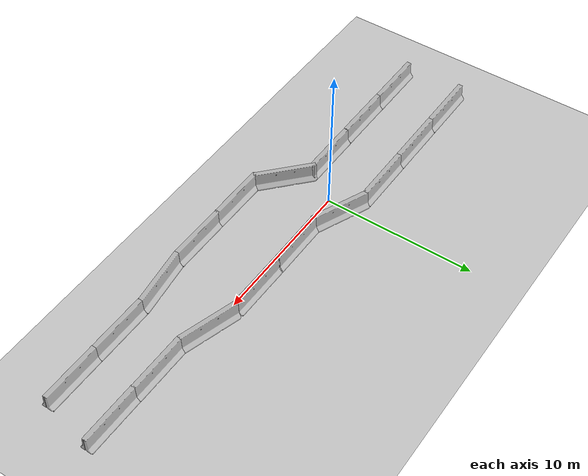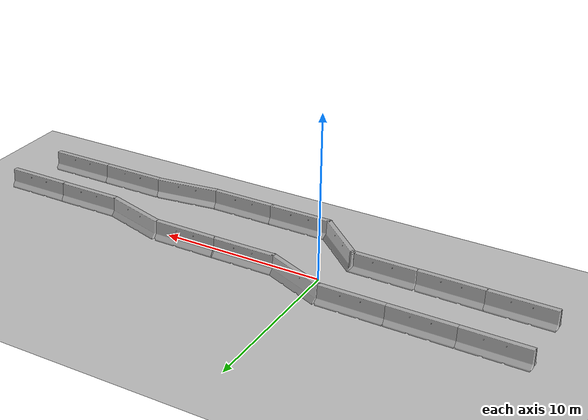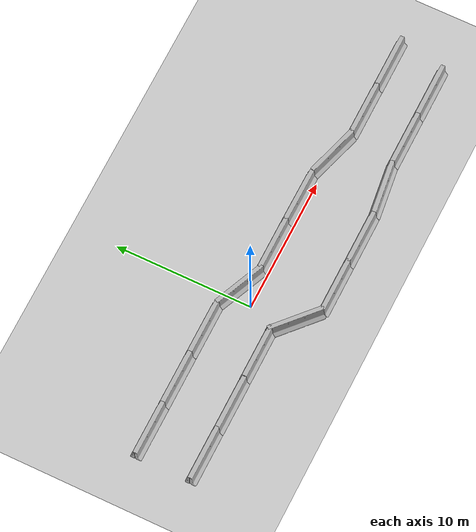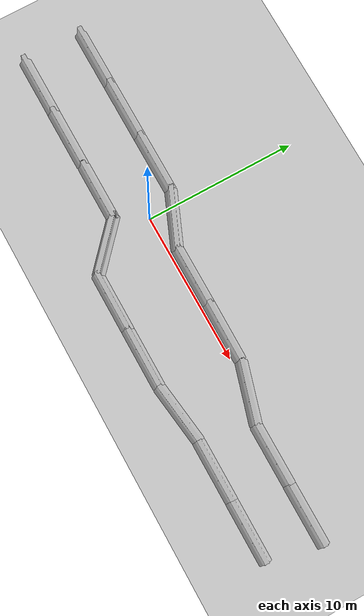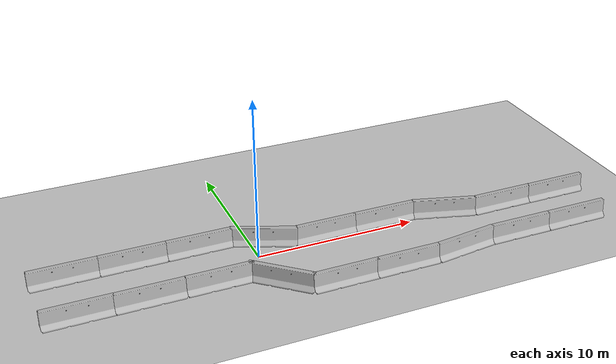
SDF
<sdf version="1.4">
 <world name="default">
  <light name="sun" type="directional">
   <pose>0 0 10 0 -0 0</pose>
   <diffuse>0.8 0.8 0.8 1</diffuse>
   <specular>0.2 0.2 0.2 1</specular>
   <attenuation>
    <range>1000</range>
    <constant>0.9</constant>
    <linear>0.01</linear>
    <quadratic>0.001</quadratic>
   </attenuation>
   <direction>-0.5 0.1 -0.9</direction>
  </light>
  <model name="ground_plane">
   <static>1</static>
   <link name="link">
    <collision name="collision">
     <geometry><plane><normal>0 0 1</normal><size>100 100</size></plane></geometry>
     <surface><friction><ode><mu>100</mu><mu2>50</mu2></ode></friction></surface>
    </collision>
    <visual name="visual">
     <cast_shadows>0</cast_shadows>
     <geometry><plane><normal>0 0 1</normal><size>100 100</size></plane></geometry>
     <material>
      <script><uri>file://media/materials/scripts/gazebo.material</uri><name>Gazebo/Grey</name></script>
     </material>
    </visual>
    <velocity_decay><linear>0</linear><angular>0</angular></velocity_decay>
   </link>
  </model>
  <physics type="ode">
   <max_step_size>0.001</max_step_size>
   <real_time_factor>1</real_time_factor>
   <real_time_update_rate>1000</real_time_update_rate>
   <gravity>0 0 -9.8</gravity>
  </physics>
  <scene><ambient>0.4 0.4 0.4 1</ambient><background>0.7 0.7 0.7 1</background><shadows>1</shadows></scene>
  <spherical_coordinates>
   <surface_model>EARTH_WGS84</surface_model>
   <latitude_deg>0</latitude_deg>
   <longitude_deg>0</longitude_deg>
   <elevation>0</elevation>
   <heading_deg>0</heading_deg>
  </spherical_coordinates>
  <model name="jersey_barrier">
   <static>1</static>
   <link name="link">
    <visual name="visual">
     <geometry><mesh><uri>model://jersey_barrier/meshes/jersey_barrier.dae</uri></mesh></geometry>
    </visual>
    <collision name="upright">
     <pose>0 0 0.5715 0 -0 0</pose>
     <geometry><box><size>4.06542 0.3063 1.143</size></box></geometry>
    </collision>
    <collision name="base">
     <pose>0 0 0.032258 0 -0 0</pose>
     <geometry><box><size>4.06542 0.8107 0.064516</size></box></geometry>
    </collision>
    <collision name="base2">
     <pose>0 0 0.1 0 -0 0</pose>
     <geometry><box><size>4.06542 0.65 0.1</size></box></geometry>
    </collision>
    <collision name="base3">
     <pose>0 0 0.2 0 -0 0</pose>
     <geometry><box><size>4.06542 0.5 0.1</size></box></geometry>
    </collision>
    <collision name="left-angle">
     <pose>0 -0.224 0.2401 0.9 -0 0</pose>
     <geometry><box><size>4.06542 0.5 0.064516</size></box></geometry>
    </collision>
    <collision name="right-angle">
     <pose>0 0.224 0.2401 -0.9 0 0</pose>
     <geometry><box><size>4.06542 0.5 0.064516</size></box></geometry>
    </collision>
    <velocity_decay><linear>0</linear><angular>0</angular></velocity_decay>
   </link>
   <pose>-7.05524 -2.0101 0 0 -0 0</pose>
  </model>
  <model name="jersey_barrier_0">
   <static>1</static>
   <link name="link">
    <visual name="visual">
     <geometry><mesh><uri>model://jersey_barrier/meshes/jersey_barrier.dae</uri></mesh></geometry>
    </visual>
    <collision name="upright">
     <pose>0 0 0.5715 0 -0 0</pose>
     <geometry><box><size>4.06542 0.3063 1.143</size></box></geometry>
    </collision>
    <collision name="base">
     <pose>0 0 0.032258 0 -0 0</pose>
     <geometry><box><size>4.06542 0.8107 0.064516</size></box></geometry>
    </collision>
    <collision name="base2">
     <pose>0 0 0.1 0 -0 0</pose>
     <geometry><box><size>4.06542 0.65 0.1</size></box></geometry>
    </collision>
    <collision name="base3">
     <pose>0 0 0.2 0 -0 0</pose>
     <geometry><box><size>4.06542 0.5 0.1</size></box></geometry>
    </collision>
    <collision name="left-angle">
     <pose>0 -0.224 0.2401 0.9 -0 0</pose>
     <geometry><box><size>4.06542 0.5 0.064516</size></box></geometry>
    </collision>
    <collision name="right-angle">
     <pose>0 0.224 0.2401 -0.9 0 0</pose>
     <geometry><box><size>4.06542 0.5 0.064516</size></box></geometry>
    </collision>
    <velocity_decay><linear>0</linear><angular>0</angular></velocity_decay>
   </link>
   <pose>-7 2 0 0 -0 0</pose>
  </model>
  <model name="jersey_barrier_1">
   <static>1</static>
   <link name="link">
    <visual name="visual">
     <geometry><mesh><uri>model://jersey_barrier/meshes/jersey_barrier.dae</uri></mesh></geometry>
    </visual>
    <collision name="upright">
     <pose>0 0 0.5715 0 -0 0</pose>
     <geometry><box><size>4.06542 0.3063 1.143</size></box></geometry>
    </collision>
    <collision name="base">
     <pose>0 0 0.032258 0 -0 0</pose>
     <geometry><box><size>4.06542 0.8107 0.064516</size></box></geometry>
    </collision>
    <collision name="base2">
     <pose>0 0 0.1 0 -0 0</pose>
     <geometry><box><size>4.06542 0.65 0.1</size></box></geometry>
    </collision>
    <collision name="base3">
     <pose>0 0 0.2 0 -0 0</pose>
     <geometry><box><size>4.06542 0.5 0.1</size></box></geometry>
    </collision>
    <collision name="left-angle">
     <pose>0 -0.224 0.2401 0.9 -0 0</pose>
     <geometry><box><size>4.06542 0.5 0.064516</size></box></geometry>
    </collision>
    <collision name="right-angle">
     <pose>0 0.224 0.2401 -0.9 0 0</pose>
     <geometry><box><size>4.06542 0.5 0.064516</size></box></geometry>
    </collision>
    <velocity_decay><linear>0</linear><angular>0</angular></velocity_decay>
   </link>
   <pose>-3 2 0 0 -0 0</pose>
  </model>
  <model name="jersey_barrier_2">
   <static>1</static>
   <link name="link">
    <visual name="visual">
     <geometry><mesh><uri>model://jersey_barrier/meshes/jersey_barrier.dae</uri></mesh></geometry>
    </visual>
    <collision name="upright">
     <pose>0 0 0.5715 0 -0 0</pose>
     <geometry><box><size>4.06542 0.3063 1.143</size></box></geometry>
    </collision>
    <collision name="base">
     <pose>0 0 0.032258 0 -0 0</pose>
     <geometry><box><size>4.06542 0.8107 0.064516</size></box></geometry>
    </collision>
    <collision name="base2">
     <pose>0 0 0.1 0 -0 0</pose>
     <geometry><box><size>4.06542 0.65 0.1</size></box></geometry>
    </collision>
    <collision name="base3">
     <pose>0 0 0.2 0 -0 0</pose>
     <geometry><box><size>4.06542 0.5 0.1</size></box></geometry>
    </collision>
    <collision name="left-angle">
     <pose>0 -0.224 0.2401 0.9 -0 0</pose>
     <geometry><box><size>4.06542 0.5 0.064516</size></box></geometry>
    </collision>
    <collision name="right-angle">
     <pose>0 0.224 0.2401 -0.9 0 0</pose>
     <geometry><box><size>4.06542 0.5 0.064516</size></box></geometry>
    </collision>
    <velocity_decay><linear>0</linear><angular>0</angular></velocity_decay>
   </link>
   <pose>-3 -2 0 0 -0 0</pose>
  </model>
  <model name="jersey_barrier_3">
   <static>1</static>
   <link name="link">
    <visual name="visual">
     <geometry><mesh><uri>model://jersey_barrier/meshes/jersey_barrier.dae</uri></mesh></geometry>
    </visual>
    <collision name="upright">
     <pose>0 0 0.5715 0 -0 0</pose>
     <geometry><box><size>4.06542 0.3063 1.143</size></box></geometry>
    </collision>
    <collision name="base">
     <pose>0 0 0.032258 0 -0 0</pose>
     <geometry><box><size>4.06542 0.8107 0.064516</size></box></geometry>
    </collision>
    <collision name="base2">
     <pose>0 0 0.1 0 -0 0</pose>
     <geometry><box><size>4.06542 0.65 0.1</size></box></geometry>
    </collision>
    <collision name="base3">
     <pose>0 0 0.2 0 -0 0</pose>
     <geometry><box><size>4.06542 0.5 0.1</size></box></geometry>
    </collision>
    <collision name="left-angle">
     <pose>0 -0.224 0.2401 0.9 -0 0</pose>
     <geometry><box><size>4.06542 0.5 0.064516</size></box></geometry>
    </collision>
    <collision name="right-angle">
     <pose>0 0.224 0.2401 -0.9 0 0</pose>
     <geometry><box><size>4.06542 0.5 0.064516</size></box></geometry>
    </collision>
    <velocity_decay><linear>0</linear><angular>0</angular></velocity_decay>
   </link>
   <pose>0.782316 1.26273 0 0 0 -0.401931</pose>
  </model>
  <model name="jersey_barrier_4">
   <static>1</static>
   <link name="link">
    <visual name="visual">
     <geometry><mesh><uri>model://jersey_barrier/meshes/jersey_barrier.dae</uri></mesh></geometry>
    </visual>
    <collision name="upright">
     <pose>0 0 0.5715 0 -0 0</pose>
     <geometry><box><size>4.06542 0.3063 1.143</size></box></geometry>
    </collision>
    <collision name="base">
     <pose>0 0 0.032258 0 -0 0</pose>
     <geometry><box><size>4.06542 0.8107 0.064516</size></box></geometry>
    </collision>
    <collision name="base2">
     <pose>0 0 0.1 0 -0 0</pose>
     <geometry><box><size>4.06542 0.65 0.1</size></box></geometry>
    </collision>
    <collision name="base3">
     <pose>0 0 0.2 0 -0 0</pose>
     <geometry><box><size>4.06542 0.5 0.1</size></box></geometry>
    </collision>
    <collision name="left-angle">
     <pose>0 -0.224 0.2401 0.9 -0 0</pose>
     <geometry><box><size>4.06542 0.5 0.064516</size></box></geometry>
    </collision>
    <collision name="right-angle">
     <pose>0 0.224 0.2401 -0.9 0 0</pose>
     <geometry><box><size>4.06542 0.5 0.064516</size></box></geometry>
    </collision>
    <velocity_decay><linear>0</linear><angular>0</angular></velocity_decay>
   </link>
   <pose>0.217498 -3.20416 0 0 0 -0.734514</pose>
  </model>
  <model name="jersey_barrier_5">
   <static>1</static>
   <link name="link">
    <visual name="visual">
     <geometry><mesh><uri>model://jersey_barrier/meshes/jersey_barrier.dae</uri></mesh></geometry>
    </visual>
    <collision name="upright">
     <pose>0 0 0.5715 0 -0 0</pose>
     <geometry><box><size>4.06542 0.3063 1.143</size></box></geometry>
    </collision>
    <collision name="base">
     <pose>0 0 0.032258 0 -0 0</pose>
     <geometry><box><size>4.06542 0.8107 0.064516</size></box></geometry>
    </collision>
    <collision name="base2">
     <pose>0 0 0.1 0 -0 0</pose>
     <geometry><box><size>4.06542 0.65 0.1</size></box></geometry>
    </collision>
    <collision name="base3">
     <pose>0 0 0.2 0 -0 0</pose>
     <geometry><box><size>4.06542 0.5 0.1</size></box></geometry>
    </collision>
    <collision name="left-angle">
     <pose>0 -0.224 0.2401 0.9 -0 0</pose>
     <geometry><box><size>4.06542 0.5 0.064516</size></box></geometry>
    </collision>
    <collision name="right-angle">
     <pose>0 0.224 0.2401 -0.9 0 0</pose>
     <geometry><box><size>4.06542 0.5 0.064516</size></box></geometry>
    </collision>
    <velocity_decay><linear>0</linear><angular>0</angular></velocity_decay>
   </link>
   <pose>4.46146 0.538418 0 0 -0 0</pose>
  </model>
  <model name="jersey_barrier_6">
   <static>1</static>
   <link name="link">
    <visual name="visual">
     <geometry><mesh><uri>model://jersey_barrier/meshes/jersey_barrier.dae</uri></mesh></geometry>
    </visual>
    <collision name="upright">
     <pose>0 0 0.5715 0 -0 0</pose>
     <geometry><box><size>4.06542 0.3063 1.143</size></box></geometry>
    </collision>
    <collision name="base">
     <pose>0 0 0.032258 0 -0 0</pose>
     <geometry><box><size>4.06542 0.8107 0.064516</size></box></geometry>
    </collision>
    <collision name="base2">
     <pose>0 0 0.1 0 -0 0</pose>
     <geometry><box><size>4.06542 0.65 0.1</size></box></geometry>
    </collision>
    <collision name="base3">
     <pose>0 0 0.2 0 -0 0</pose>
     <geometry><box><size>4.06542 0.5 0.1</size></box></geometry>
    </collision>
    <collision name="left-angle">
     <pose>0 -0.224 0.2401 0.9 -0 0</pose>
     <geometry><box><size>4.06542 0.5 0.064516</size></box></geometry>
    </collision>
    <collision name="right-angle">
     <pose>0 0.224 0.2401 -0.9 0 0</pose>
     <geometry><box><size>4.06542 0.5 0.064516</size></box></geometry>
    </collision>
    <velocity_decay><linear>0</linear><angular>0</angular></velocity_decay>
   </link>
   <pose>3.57336 -4.53706 0 0 -0 0</pose>
  </model>
  <model name="jersey_barrier_7">
   <static>1</static>
   <link name="link">
    <visual name="visual">
     <geometry><mesh><uri>model://jersey_barrier/meshes/jersey_barrier.dae</uri></mesh></geometry>
    </visual>
    <collision name="upright">
     <pose>0 0 0.5715 0 -0 0</pose>
     <geometry><box><size>4.06542 0.3063 1.143</size></box></geometry>
    </collision>
    <collision name="base">
     <pose>0 0 0.032258 0 -0 0</pose>
     <geometry><box><size>4.06542 0.8107 0.064516</size></box></geometry>
    </collision>
    <collision name="base2">
     <pose>0 0 0.1 0 -0 0</pose>
     <geometry><box><size>4.06542 0.65 0.1</size></box></geometry>
    </collision>
    <collision name="base3">
     <pose>0 0 0.2 0 -0 0</pose>
     <geometry><box><size>4.06542 0.5 0.1</size></box></geometry>
    </collision>
    <collision name="left-angle">
     <pose>0 -0.224 0.2401 0.9 -0 0</pose>
     <geometry><box><size>4.06542 0.5 0.064516</size></box></geometry>
    </collision>
    <collision name="right-angle">
     <pose>0 0.224 0.2401 -0.9 0 0</pose>
     <geometry><box><size>4.06542 0.5 0.064516</size></box></geometry>
    </collision>
    <velocity_decay><linear>0</linear><angular>0</angular></velocity_decay>
   </link>
   <pose>7.4466 -4.54069 0 0 -0 0</pose>
  </model>
  <model name="jersey_barrier_8">
   <static>1</static>
   <link name="link">
    <visual name="visual">
     <geometry><mesh><uri>model://jersey_barrier/meshes/jersey_barrier.dae</uri></mesh></geometry>
    </visual>
    <collision name="upright">
     <pose>0 0 0.5715 0 -0 0</pose>
     <geometry><box><size>4.06542 0.3063 1.143</size></box></geometry>
    </collision>
    <collision name="base">
     <pose>0 0 0.032258 0 -0 0</pose>
     <geometry><box><size>4.06542 0.8107 0.064516</size></box></geometry>
    </collision>
    <collision name="base2">
     <pose>0 0 0.1 0 -0 0</pose>
     <geometry><box><size>4.06542 0.65 0.1</size></box></geometry>
    </collision>
    <collision name="base3">
     <pose>0 0 0.2 0 -0 0</pose>
     <geometry><box><size>4.06542 0.5 0.1</size></box></geometry>
    </collision>
    <collision name="left-angle">
     <pose>0 -0.224 0.2401 0.9 -0 0</pose>
     <geometry><box><size>4.06542 0.5 0.064516</size></box></geometry>
    </collision>
    <collision name="right-angle">
     <pose>0 0.224 0.2401 -0.9 0 0</pose>
     <geometry><box><size>4.06542 0.5 0.064516</size></box></geometry>
    </collision>
    <velocity_decay><linear>0</linear><angular>0</angular></velocity_decay>
   </link>
   <pose>8.38145 0.52526 0 0 0 -0.006802</pose>
  </model>
  <model name="jersey_barrier_9">
   <static>1</static>
   <link name="link">
    <visual name="visual">
     <geometry><mesh><uri>model://jersey_barrier/meshes/jersey_barrier.dae</uri></mesh></geometry>
    </visual>
    <collision name="upright">
     <pose>0 0 0.5715 0 -0 0</pose>
     <geometry><box><size>4.06542 0.3063 1.143</size></box></geometry>
    </collision>
    <collision name="base">
     <pose>0 0 0.032258 0 -0 0</pose>
     <geometry><box><size>4.06542 0.8107 0.064516</size></box></geometry>
    </collision>
    <collision name="base2">
     <pose>0 0 0.1 0 -0 0</pose>
     <geometry><box><size>4.06542 0.65 0.1</size></box></geometry>
    </collision>
    <collision name="base3">
     <pose>0 0 0.2 0 -0 0</pose>
     <geometry><box><size>4.06542 0.5 0.1</size></box></geometry>
    </collision>
    <collision name="left-angle">
     <pose>0 -0.224 0.2401 0.9 -0 0</pose>
     <geometry><box><size>4.06542 0.5 0.064516</size></box></geometry>
    </collision>
    <collision name="right-angle">
     <pose>0 0.224 0.2401 -0.9 0 0</pose>
     <geometry><box><size>4.06542 0.5 0.064516</size></box></geometry>
    </collision>
    <velocity_decay><linear>0</linear><angular>0</angular></velocity_decay>
   </link>
   <pose>12.3476 -0.045557 0 0 0 -0.291245</pose>
  </model>
  <model name="jersey_barrier_10">
   <static>1</static>
   <link name="link">
    <visual name="visual">
     <geometry><mesh><uri>model://jersey_barrier/meshes/jersey_barrier.dae</uri></mesh></geometry>
    </visual>
    <collision name="upright">
     <pose>0 0 0.5715 0 -0 0</pose>
     <geometry><box><size>4.06542 0.3063 1.143</size></box></geometry>
    </collision>
    <collision name="base">
     <pose>0 0 0.032258 0 -0 0</pose>
     <geometry><box><size>4.06542 0.8107 0.064516</size></box></geometry>
    </collision>
    <collision name="base2">
     <pose>0 0 0.1 0 -0 0</pose>
     <geometry><box><size>4.06542 0.65 0.1</size></box></geometry>
    </collision>
    <collision name="base3">
     <pose>0 0 0.2 0 -0 0</pose>
     <geometry><box><size>4.06542 0.5 0.1</size></box></geometry>
    </collision>
    <collision name="left-angle">
     <pose>0 -0.224 0.2401 0.9 -0 0</pose>
     <geometry><box><size>4.06542 0.5 0.064516</size></box></geometry>
    </collision>
    <collision name="right-angle">
     <pose>0 0.224 0.2401 -0.9 0 0</pose>
     <geometry><box><size>4.06542 0.5 0.064516</size></box></geometry>
    </collision>
    <velocity_decay><linear>0</linear><angular>0</angular></velocity_decay>
   </link>
   <pose>11.4249 -4.29473 0 0 -0 0.129675</pose>
  </model>
  <model name="jersey_barrier_11">
   <static>1</static>
   <link name="link">
    <visual name="visual">
     <geometry><mesh><uri>model://jersey_barrier/meshes/jersey_barrier.dae</uri></mesh></geometry>
    </visual>
    <collision name="upright">
     <pose>0 0 0.5715 0 -0 0</pose>
     <geometry><box><size>4.06542 0.3063 1.143</size></box></geometry>
    </collision>
    <collision name="base">
     <pose>0 0 0.032258 0 -0 0</pose>
     <geometry><box><size>4.06542 0.8107 0.064516</size></box></geometry>
    </collision>
    <collision name="base2">
     <pose>0 0 0.1 0 -0 0</pose>
     <geometry><box><size>4.06542 0.65 0.1</size></box></geometry>
    </collision>
    <collision name="base3">
     <pose>0 0 0.2 0 -0 0</pose>
     <geometry><box><size>4.06542 0.5 0.1</size></box></geometry>
    </collision>
    <collision name="left-angle">
     <pose>0 -0.224 0.2401 0.9 -0 0</pose>
     <geometry><box><size>4.06542 0.5 0.064516</size></box></geometry>
    </collision>
    <collision name="right-angle">
     <pose>0 0.224 0.2401 -0.9 0 0</pose>
     <geometry><box><size>4.06542 0.5 0.064516</size></box></geometry>
    </collision>
    <velocity_decay><linear>0</linear><angular>0</angular></velocity_decay>
   </link>
   <pose>-11 -2 0 0 -0 0</pose>
  </model>
  <model name="jersey_barrier_12">
   <static>1</static>
   <link name="link">
    <visual name="visual">
     <geometry><mesh><uri>model://jersey_barrier/meshes/jersey_barrier.dae</uri></mesh></geometry>
    </visual>
    <collision name="upright">
     <pose>0 0 0.5715 0 -0 0</pose>
     <geometry><box><size>4.06542 0.3063 1.143</size></box></geometry>
    </collision>
    <collision name="base">
     <pose>0 0 0.032258 0 -0 0</pose>
     <geometry><box><size>4.06542 0.8107 0.064516</size></box></geometry>
    </collision>
    <collision name="base2">
     <pose>0 0 0.1 0 -0 0</pose>
     <geometry><box><size>4.06542 0.65 0.1</size></box></geometry>
    </collision>
    <collision name="base3">
     <pose>0 0 0.2 0 -0 0</pose>
     <geometry><box><size>4.06542 0.5 0.1</size></box></geometry>
    </collision>
    <collision name="left-angle">
     <pose>0 -0.224 0.2401 0.9 -0 0</pose>
     <geometry><box><size>4.06542 0.5 0.064516</size></box></geometry>
    </collision>
    <collision name="right-angle">
     <pose>0 0.224 0.2401 -0.9 0 0</pose>
     <geometry><box><size>4.06542 0.5 0.064516</size></box></geometry>
    </collision>
    <velocity_decay><linear>0</linear><angular>0</angular></velocity_decay>
   </link>
   <pose>-11 2 0 0 -0 0</pose>
  </model>
  <model name="jersey_barrier_13">
   <static>1</static>
   <link name="link">
    <visual name="visual">
     <geometry><mesh><uri>model://jersey_barrier/meshes/jersey_barrier.dae</uri></mesh></geometry>
    </visual>
    <collision name="upright">
     <pose>0 0 0.5715 0 -0 0</pose>
     <geometry><box><size>4.06542 0.3063 1.143</size></box></geometry>
    </collision>
    <collision name="base">
     <pose>0 0 0.032258 0 -0 0</pose>
     <geometry><box><size>4.06542 0.8107 0.064516</size></box></geometry>
    </collision>
    <collision name="base2">
     <pose>0 0 0.1 0 -0 0</pose>
     <geometry><box><size>4.06542 0.65 0.1</size></box></geometry>
    </collision>
    <collision name="base3">
     <pose>0 0 0.2 0 -0 0</pose>
     <geometry><box><size>4.06542 0.5 0.1</size></box></geometry>
    </collision>
    <collision name="left-angle">
     <pose>0 -0.224 0.2401 0.9 -0 0</pose>
     <geometry><box><size>4.06542 0.5 0.064516</size></box></geometry>
    </collision>
    <collision name="right-angle">
     <pose>0 0.224 0.2401 -0.9 0 0</pose>
     <geometry><box><size>4.06542 0.5 0.064516</size></box></geometry>
    </collision>
    <velocity_decay><linear>0</linear><angular>0</angular></velocity_decay>
   </link>
   <pose>16.2019 -0.613385 0 0 -0 0</pose>
  </model>
  <model name="jersey_barrier_14">
   <static>1</static>
   <link name="link">
    <visual name="visual">
     <geometry><mesh><uri>model://jersey_barrier/meshes/jersey_barrier.dae</uri></mesh></geometry>
    </visual>
    <collision name="upright">
     <pose>0 0 0.5715 0 -0 0</pose>
     <geometry><box><size>4.06542 0.3063 1.143</size></box></geometry>
    </collision>
    <collision name="base">
     <pose>0 0 0.032258 0 -0 0</pose>
     <geometry><box><size>4.06542 0.8107 0.064516</size></box></geometry>
    </collision>
    <collision name="base2">
     <pose>0 0 0.1 0 -0 0</pose>
     <geometry><box><size>4.06542 0.65 0.1</size></box></geometry>
    </collision>
    <collision name="base3">
     <pose>0 0 0.2 0 -0 0</pose>
     <geometry><box><size>4.06542 0.5 0.1</size></box></geometry>
    </collision>
    <collision name="left-angle">
     <pose>0 -0.224 0.2401 0.9 -0 0</pose>
     <geometry><box><size>4.06542 0.5 0.064516</size></box></geometry>
    </collision>
    <collision name="right-angle">
     <pose>0 0.224 0.2401 -0.9 0 0</pose>
     <geometry><box><size>4.06542 0.5 0.064516</size></box></geometry>
    </collision>
    <velocity_decay><linear>0</linear><angular>0</angular></velocity_decay>
   </link>
   <pose>15.3817 -4.05487 0 0 -0 0</pose>
  </model>
  <model name="jersey_barrier_15">
   <static>1</static>
   <link name="link">
    <visual name="visual">
     <geometry><mesh><uri>model://jersey_barrier/meshes/jersey_barrier.dae</uri></mesh></geometry>
    </visual>
    <collision name="upright">
     <pose>0 0 0.5715 0 -0 0</pose>
     <geometry><box><size>4.06542 0.3063 1.143</size></box></geometry>
    </collision>
    <collision name="base">
     <pose>0 0 0.032258 0 -0 0</pose>
     <geometry><box><size>4.06542 0.8107 0.064516</size></box></geometry>
    </collision>
    <collision name="base2">
     <pose>0 0 0.1 0 -0 0</pose>
     <geometry><box><size>4.06542 0.65 0.1</size></box></geometry>
    </collision>
    <collision name="base3">
     <pose>0 0 0.2 0 -0 0</pose>
     <geometry><box><size>4.06542 0.5 0.1</size></box></geometry>
    </collision>
    <collision name="left-angle">
     <pose>0 -0.224 0.2401 0.9 -0 0</pose>
     <geometry><box><size>4.06542 0.5 0.064516</size></box></geometry>
    </collision>
    <collision name="right-angle">
     <pose>0 0.224 0.2401 -0.9 0 0</pose>
     <geometry><box><size>4.06542 0.5 0.064516</size></box></geometry>
    </collision>
    <velocity_decay><linear>0</linear><angular>0</angular></velocity_decay>
   </link>
   <pose>20.1446 -0.625337 0 0 -0 0</pose>
  </model>
  <model name="jersey_barrier_16">
   <static>1</static>
   <link name="link">
    <visual name="visual">
     <geometry><mesh><uri>model://jersey_barrier/meshes/jersey_barrier.dae</uri></mesh></geometry>
    </visual>
    <collision name="upright">
     <pose>0 0 0.5715 0 -0 0</pose>
     <geometry><box><size>4.06542 0.3063 1.143</size></box></geometry>
    </collision>
    <collision name="base">
     <pose>0 0 0.032258 0 -0 0</pose>
     <geometry><box><size>4.06542 0.8107 0.064516</size></box></geometry>
    </collision>
    <collision name="base2">
     <pose>0 0 0.1 0 -0 0</pose>
     <geometry><box><size>4.06542 0.65 0.1</size></box></geometry>
    </collision>
    <collision name="base3">
     <pose>0 0 0.2 0 -0 0</pose>
     <geometry><box><size>4.06542 0.5 0.1</size></box></geometry>
    </collision>
    <collision name="left-angle">
     <pose>0 -0.224 0.2401 0.9 -0 0</pose>
     <geometry><box><size>4.06542 0.5 0.064516</size></box></geometry>
    </collision>
    <collision name="right-angle">
     <pose>0 0.224 0.2401 -0.9 0 0</pose>
     <geometry><box><size>4.06542 0.5 0.064516</size></box></geometry>
    </collision>
    <velocity_decay><linear>0</linear><angular>0</angular></velocity_decay>
   </link>
   <pose>19.3607 -4.06006 0 0 -0 0</pose>
  </model>
 </world>
</sdf>
